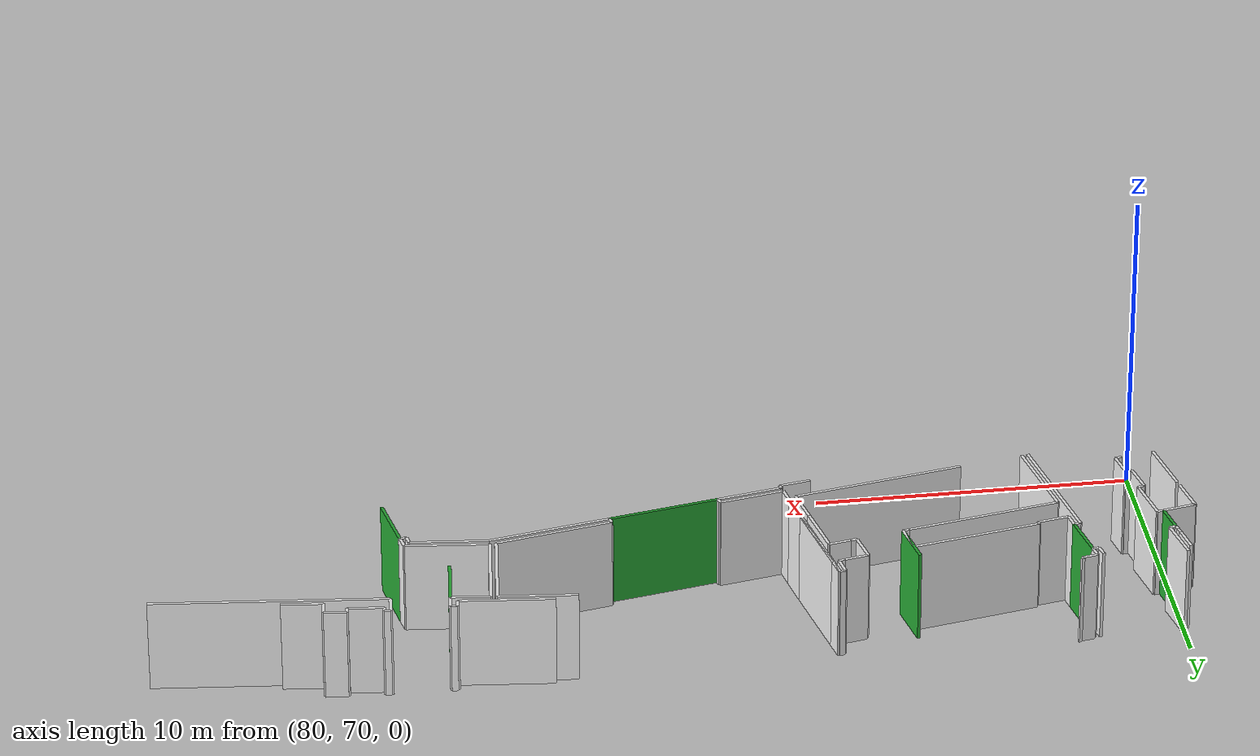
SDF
<sdf version="1.6">
 <world name="default">
  <model name="wall_80.2_77.2_1.5">
   <static>true</static>
   <pose>80.19499999997788 77.22500000009313 1.5 0 0 -1.3773690000310248</pose>
   <link name="link">
    <visual name="visual">
     <geometry><box><size>0.9884331031966657 0.1 3</size></box></geometry>
     <material>
      <script><uri>file://media/materials/scripts/gazebo.material</uri><name>Gazebo/Green</name></script>
     </material>
    </visual>
    <collision name="collision"><geometry><box><size>0.9884331031966657 0.1 3</size></box></geometry></collision>
   </link>
  </model>
  <model name="wall_102.5_77.8_1.5">
   <static>true</static>
   <pose>102.5099999998929 77.78999999980442 1.5 0 0 -1.6704649793629005</pose>
   <link name="link">
    <visual name="visual">
     <geometry><box><size>1.808977612096451 0.1 3</size></box></geometry>
     <material>
      <script><uri>file://media/materials/scripts/gazebo.material</uri><name>Gazebo/Green</name></script>
     </material>
    </visual>
    <collision name="collision"><geometry><box><size>1.808977612096451 0.1 3</size></box></geometry></collision>
   </link>
  </model>
  <model name="wall_103.9_74.2_1.5">
   <static>true</static>
   <pose>103.92999999999302 74.15500000002794 1.5 0 0 1.757092443406934</pose>
   <link name="link">
    <visual name="visual">
     <geometry><box><size>1.943630623030091 0.1 3</size></box></geometry>
     <material>
      <script><uri>file://media/materials/scripts/gazebo.material</uri><name>Gazebo/Green</name></script>
     </material>
    </visual>
    <collision name="collision"><geometry><box><size>1.943630623030091 0.1 3</size></box></geometry></collision>
   </link>
  </model>
  <model name="wall_88.3_77.5_1.5">
   <static>true</static>
   <pose>88.2949999999837 77.53999999980442 1.5 0 0 1.7642907361109128</pose>
   <link name="link">
    <visual name="visual">
     <geometry><box><size>1.508144555394632 0.1 3</size></box></geometry>
     <material>
      <script><uri>file://media/materials/scripts/gazebo.material</uri><name>Gazebo/Green</name></script>
     </material>
    </visual>
    <collision name="collision"><geometry><box><size>1.508144555394632 0.1 3</size></box></geometry></collision>
   </link>
  </model>
  <model name="wall_83.0_77.9_1.5">
   <static>true</static>
   <pose>83.01999999998952 77.89500000001863 1.5 0 0 -1.3721104451170056</pose>
   <link name="link">
    <visual name="visual">
     <geometry><box><size>1.51990131280261 0.1 3</size></box></geometry>
     <material>
      <script><uri>file://media/materials/scripts/gazebo.material</uri><name>Gazebo/Green</name></script>
     </material>
    </visual>
    <collision name="collision"><geometry><box><size>1.51990131280261 0.1 3</size></box></geometry></collision>
   </link>
  </model>
  <model name="wall_95.5_74.5_1.5">
   <static>true</static>
   <pose>95.51500000001397 74.51000000000931 1.5 0 0 0.19351316121262999</pose>
   <link name="link">
    <visual name="visual">
     <geometry><box><size>3.5360005656156344 0.1 3</size></box></geometry>
     <material>
      <script><uri>file://media/materials/scripts/gazebo.material</uri><name>Gazebo/Green</name></script>
     </material>
    </visual>
    <collision name="collision"><geometry><box><size>3.5360005656156344 0.1 3</size></box></geometry></collision>
   </link>
  </model>
  <model name="wall_79.8_76.6_1.5">
   <static>true</static>
   <pose>79.77499999999418 76.63500000000931 1.5 0 0 -2.9404657673681704</pose>
   <link name="link">
    <visual name="visual">
     <geometry><box><size>1.0511898021373587 0.1 3</size></box></geometry>
     <material>
      <script><uri>file://media/materials/scripts/gazebo.material</uri><name>Gazebo/White</name></script>
     </material>
    </visual>
    <collision name="collision"><geometry><box><size>1.0511898021373587 0.1 3</size></box></geometry></collision>
   </link>
  </model>
  <model name="wall_79.4_75.9_1.5">
   <static>true</static>
   <pose>79.38000000000466 75.92999999993481 1.5 0 0 -1.3734007669077033</pose>
   <link name="link">
    <visual name="visual">
     <geometry><box><size>1.2237646829864708 0.1 3</size></box></geometry>
     <material>
      <script><uri>file://media/materials/scripts/gazebo.material</uri><name>Gazebo/White</name></script>
     </material>
    </visual>
    <collision name="collision"><geometry><box><size>1.2237646829864708 0.1 3</size></box></geometry></collision>
   </link>
  </model>
  <model name="wall_80.0_78.5_1.5">
   <static>true</static>
   <pose>79.95000000001164 78.46499999985099 1.5 0 0 -1.3803612113601613</pose>
   <link name="link">
    <visual name="visual">
     <geometry><box><size>0.8452810184394953 0.1 3</size></box></geometry>
     <material>
      <script><uri>file://media/materials/scripts/gazebo.material</uri><name>Gazebo/White</name></script>
     </material>
    </visual>
    <collision name="collision"><geometry><box><size>0.8452810184394953 0.1 3</size></box></geometry></collision>
   </link>
  </model>
  <model name="wall_80.1_78.0_1.5">
   <static>true</static>
   <pose>80.05000000001746 77.95499999984168 1.5 0 0 -1.363300100406013</pose>
   <link name="link">
    <visual name="visual">
     <geometry><box><size>0.19416487833047835 0.1 3</size></box></geometry>
     <material>
      <script><uri>file://media/materials/scripts/gazebo.material</uri><name>Gazebo/White</name></script>
     </material>
    </visual>
    <collision name="collision"><geometry><box><size>0.19416487833047835 0.1 3</size></box></geometry></collision>
   </link>
  </model>
  <model name="wall_80.1_77.8_1.5">
   <static>true</static>
   <pose>80.08499999999185 77.78499999991618 1.5 0 0 -1.373400767019641</pose>
   <link name="link">
    <visual name="visual">
     <geometry><box><size>0.15297058531052382 0.1 3</size></box></geometry>
     <material>
      <script><uri>file://media/materials/scripts/gazebo.material</uri><name>Gazebo/White</name></script>
     </material>
    </visual>
    <collision name="collision"><geometry><box><size>0.15297058531052382 0.1 3</size></box></geometry></collision>
   </link>
  </model>
  <model name="wall_104.6_79.1_1.5">
   <static>true</static>
   <pose>104.64999999999418 79.0800000000745 1.5 0 0 -1.6814535479332997</pose>
   <link name="link">
    <visual name="visual">
     <geometry><box><size>0.1811077024621769 0.1 3</size></box></geometry>
     <material>
      <script><uri>file://media/materials/scripts/gazebo.material</uri><name>Gazebo/White</name></script>
     </material>
    </visual>
    <collision name="collision"><geometry><box><size>0.1811077024621769 0.1 3</size></box></geometry></collision>
   </link>
  </model>
  <model name="wall_105.2_78.9_1.5">
   <static>true</static>
   <pose>105.20000000001164 78.93500000005588 1.5 0 0 -0.09790030803535979</pose>
   <link name="link">
    <visual name="visual">
     <geometry><box><size>1.1253888217248873 0.1 3</size></box></geometry>
     <material>
      <script><uri>file://media/materials/scripts/gazebo.material</uri><name>Gazebo/White</name></script>
     </material>
    </visual>
    <collision name="collision"><geometry><box><size>1.1253888217248873 0.1 3</size></box></geometry></collision>
   </link>
  </model>
  <model name="wall_105.8_79.0_1.5">
   <static>true</static>
   <pose>105.77000000001863 78.97999999998137 1.5 0 0 1.4711276743037347</pose>
   <link name="link">
    <visual name="visual">
     <geometry><box><size>0.20099751260961132 0.1 3</size></box></geometry>
     <material>
      <script><uri>file://media/materials/scripts/gazebo.material</uri><name>Gazebo/White</name></script>
     </material>
    </visual>
    <collision name="collision"><geometry><box><size>0.20099751260961132 0.1 3</size></box></geometry></collision>
   </link>
  </model>
  <model name="wall_106.1_79.0_1.5">
   <static>true</static>
   <pose>106.13000000000466 79.0449999999255 1.5 0 0 -0.0996686529192806</pose>
   <link name="link">
    <visual name="visual">
     <geometry><box><size>0.7034912934617817 0.1 3</size></box></geometry>
     <material>
      <script><uri>file://media/materials/scripts/gazebo.material</uri><name>Gazebo/White</name></script>
     </material>
    </visual>
    <collision name="collision"><geometry><box><size>0.7034912934617817 0.1 3</size></box></geometry></collision>
   </link>
  </model>
  <model name="wall_106.5_78.8_1.5">
   <static>true</static>
   <pose>106.4549999999872 78.75999999977648 1.5 0 0 -1.6704649792630062</pose>
   <link name="link">
    <visual name="visual">
     <geometry><box><size>0.5024937810548861 0.1 3</size></box></geometry>
     <material>
      <script><uri>file://media/materials/scripts/gazebo.material</uri><name>Gazebo/White</name></script>
     </material>
    </visual>
    <collision name="collision"><geometry><box><size>0.5024937810548861 0.1 3</size></box></geometry></collision>
   </link>
  </model>
  <model name="wall_107.1_78.4_1.5">
   <static>true</static>
   <pose>107.07499999998254 78.44499999983236 1.5 0 0 -0.10043611196470777</pose>
   <link name="link">
    <visual name="visual">
     <geometry><box><size>1.2965338406369806 0.1 3</size></box></geometry>
     <material>
      <script><uri>file://media/materials/scripts/gazebo.material</uri><name>Gazebo/White</name></script>
     </material>
    </visual>
    <collision name="collision"><geometry><box><size>1.2965338406369806 0.1 3</size></box></geometry></collision>
   </link>
  </model>
  <model name="wall_100.9_79.1_1.5">
   <static>true</static>
   <pose>100.93499999999767 79.06000000005588 1.5 0 0 -0.10066865209668763</pose>
   <link name="link">
    <visual name="visual">
     <geometry><box><size>2.9851130631388623 0.1 3</size></box></geometry>
     <material>
      <script><uri>file://media/materials/scripts/gazebo.material</uri><name>Gazebo/White</name></script>
     </material>
    </visual>
    <collision name="collision"><geometry><box><size>2.9851130631388623 0.1 3</size></box></geometry></collision>
   </link>
  </model>
  <model name="wall_102.4_79.1_1.5">
   <static>true</static>
   <pose>102.43499999999767 79.06000000005588 1.5 0 0 1.471127674150051</pose>
   <link name="link">
    <visual name="visual">
     <geometry><box><size>0.3014962684510667 0.1 3</size></box></geometry>
     <material>
      <script><uri>file://media/materials/scripts/gazebo.material</uri><name>Gazebo/White</name></script>
     </material>
    </visual>
    <collision name="collision"><geometry><box><size>0.3014962684510667 0.1 3</size></box></geometry></collision>
   </link>
  </model>
  <model name="wall_102.6_78.9_1.5">
   <static>true</static>
   <pose>102.625 78.93999999994412 1.5 0 0 1.4711276742115245</pose>
   <link name="link">
    <visual name="visual">
     <geometry><box><size>0.502493781060678 0.1 3</size></box></geometry>
     <material>
      <script><uri>file://media/materials/scripts/gazebo.material</uri><name>Gazebo/White</name></script>
     </material>
    </visual>
    <collision name="collision"><geometry><box><size>0.502493781060678 0.1 3</size></box></geometry></collision>
   </link>
  </model>
  <model name="wall_102.6_79.2_1.5">
   <static>true</static>
   <pose>102.55000000001746 79.19999999995343 1.5 0 0 3.0419240010121844</pose>
   <link name="link">
    <visual name="visual">
     <geometry><box><size>0.20099751243585498 0.1 3</size></box></geometry>
     <material>
      <script><uri>file://media/materials/scripts/gazebo.material</uri><name>Gazebo/White</name></script>
     </material>
    </visual>
    <collision name="collision"><geometry><box><size>0.20099751243585498 0.1 3</size></box></geometry></collision>
   </link>
  </model>
  <model name="wall_104.6_79.2_1.5">
   <static>true</static>
   <pose>104.55999999999767 79.17999999993481 1.5 0 0 3.0419240009833683</pose>
   <link name="link">
    <visual name="visual">
     <geometry><box><size>0.20099751237793617 0.1 3</size></box></geometry>
     <material>
      <script><uri>file://media/materials/scripts/gazebo.material</uri><name>Gazebo/White</name></script>
     </material>
    </visual>
    <collision name="collision"><geometry><box><size>0.20099751237793617 0.1 3</size></box></geometry></collision>
   </link>
  </model>
  <model name="wall_104.4_78.8_1.5">
   <static>true</static>
   <pose>104.43000000002212 78.8499999998603 1.5 0 0 -1.6588037002976554</pose>
   <link name="link">
    <visual name="visual">
     <geometry><box><size>0.6826419268018251 0.1 3</size></box></geometry>
     <material>
      <script><uri>file://media/materials/scripts/gazebo.material</uri><name>Gazebo/White</name></script>
     </material>
    </visual>
    <collision name="collision"><geometry><box><size>0.6826419268018251 0.1 3</size></box></geometry></collision>
   </link>
  </model>
  <model name="wall_108.1_78.1_1.5">
   <static>true</static>
   <pose>108.05000000001746 78.1449999997858 1.5 0 0 3.0419240011009996</pose>
   <link name="link">
    <visual name="visual">
     <geometry><box><size>7.336409203404813 0.1 3</size></box></geometry>
     <material>
      <script><uri>file://media/materials/scripts/gazebo.material</uri><name>Gazebo/White</name></script>
     </material>
    </visual>
    <collision name="collision"><geometry><box><size>7.336409203404813 0.1 3</size></box></geometry></collision>
   </link>
  </model>
  <model name="wall_102.0_78.8_1.5">
   <static>true</static>
   <pose>101.98999999999069 78.75499999988824 1.5 0 0 3.035435852165321</pose>
   <link name="link">
    <visual name="visual">
     <geometry><box><size>1.2269066793781709 0.1 3</size></box></geometry>
     <material>
      <script><uri>file://media/materials/scripts/gazebo.material</uri><name>Gazebo/White</name></script>
     </material>
    </visual>
    <collision name="collision"><geometry><box><size>1.2269066793781709 0.1 3</size></box></geometry></collision>
   </link>
  </model>
  <model name="wall_101.2_77.3_1.5">
   <static>true</static>
   <pose>101.22500000000582 77.31499999994412 1.5 0 0 -1.6734245234307366</pose>
   <link name="link">
    <visual name="visual">
     <geometry><box><size>3.0259213470698443 0.1 3</size></box></geometry>
     <material>
      <script><uri>file://media/materials/scripts/gazebo.material</uri><name>Gazebo/White</name></script>
     </material>
    </visual>
    <collision name="collision"><geometry><box><size>3.0259213470698443 0.1 3</size></box></geometry></collision>
   </link>
  </model>
  <model name="wall_102.4_75.7_1.5">
   <static>true</static>
   <pose>102.36499999999069 75.67999999993481 1.5 0 0 -0.10005091556329442</pose>
   <link name="link">
    <visual name="visual">
     <geometry><box><size>2.6030174797640266 0.1 3</size></box></geometry>
     <material>
      <script><uri>file://media/materials/scripts/gazebo.material</uri><name>Gazebo/White</name></script>
     </material>
    </visual>
    <collision name="collision"><geometry><box><size>2.6030174797640266 0.1 3</size></box></geometry></collision>
   </link>
  </model>
  <model name="wall_103.7_75.3_1.5">
   <static>true</static>
   <pose>103.7049999999872 75.32999999984168 1.5 0 0 -1.3690339823938056</pose>
   <link name="link">
    <visual name="visual">
     <geometry><box><size>0.44911023140809897 0.1 3</size></box></geometry>
     <material>
      <script><uri>file://media/materials/scripts/gazebo.material</uri><name>Gazebo/White</name></script>
     </material>
    </visual>
    <collision name="collision"><geometry><box><size>0.44911023140809897 0.1 3</size></box></geometry></collision>
   </link>
  </model>
  <model name="wall_79.7_74.2_1.5">
   <static>true</static>
   <pose>79.72999999998137 74.17500000004657 1.5 0 0 1.76520086863083</pose>
   <link name="link">
    <visual name="visual">
     <geometry><box><size>1.967053634411279 0.1 3</size></box></geometry>
     <material>
      <script><uri>file://media/materials/scripts/gazebo.material</uri><name>Gazebo/White</name></script>
     </material>
    </visual>
    <collision name="collision"><geometry><box><size>1.967053634411279 0.1 3</size></box></geometry></collision>
   </link>
  </model>
  <model name="wall_88.3_76.8_1.5">
   <static>true</static>
   <pose>88.33999999999651 76.77999999979511 1.5 0 0 -2.9441970935720057</pose>
   <link name="link">
    <visual name="visual">
     <geometry><box><size>0.20396078056243275 0.1 3</size></box></geometry>
     <material>
      <script><uri>file://media/materials/scripts/gazebo.material</uri><name>Gazebo/White</name></script>
     </material>
    </visual>
    <collision name="collision"><geometry><box><size>0.20396078056243275 0.1 3</size></box></geometry></collision>
   </link>
  </model>
  <model name="wall_85.8_76.3_1.5">
   <static>true</static>
   <pose>85.83499999999185 76.28499999991618 1.5 0 0 -2.946597089187742</pose>
   <link name="link">
    <visual name="visual">
     <geometry><box><size>4.902917498739577 0.1 3</size></box></geometry>
     <material>
      <script><uri>file://media/materials/scripts/gazebo.material</uri><name>Gazebo/White</name></script>
     </material>
    </visual>
    <collision name="collision"><geometry><box><size>4.902917498739577 0.1 3</size></box></geometry></collision>
   </link>
  </model>
  <model name="wall_83.7_74.3_1.5">
   <static>true</static>
   <pose>83.72500000000582 74.34000000008382 1.5 0 0 -1.3727467447894708</pose>
   <link name="link">
    <visual name="visual">
     <geometry><box><size>2.9986163475345844 0.1 3</size></box></geometry>
     <material>
      <script><uri>file://media/materials/scripts/gazebo.material</uri><name>Gazebo/White</name></script>
     </material>
    </visual>
    <collision name="collision"><geometry><box><size>2.9986163475345844 0.1 3</size></box></geometry></collision>
   </link>
  </model>
  <model name="wall_88.7_73.8_1.5">
   <static>true</static>
   <pose>88.7050000000163 73.80000000004657 1.5 0 0 0.1955976473787338</pose>
   <link name="link">
    <visual name="visual">
     <geometry><box><size>5.4539985331744765 0.1 3</size></box></geometry>
     <material>
      <script><uri>file://media/materials/scripts/gazebo.material</uri><name>Gazebo/White</name></script>
     </material>
    </visual>
    <collision name="collision"><geometry><box><size>5.4539985331744765 0.1 3</size></box></geometry></collision>
   </link>
  </model>
  <model name="wall_91.4_74.4_1.5">
   <static>true</static>
   <pose>91.36499999999069 74.42999999993481 1.5 0 0 1.7196862747459547</pose>
   <link name="link">
    <visual name="visual">
     <geometry><box><size>0.2022374838894058 0.1 3</size></box></geometry>
     <material>
      <script><uri>file://media/materials/scripts/gazebo.material</uri><name>Gazebo/White</name></script>
     </material>
    </visual>
    <collision name="collision"><geometry><box><size>0.2022374838894058 0.1 3</size></box></geometry></collision>
   </link>
  </model>
  <model name="wall_91.2_75.0_1.5">
   <static>true</static>
   <pose>91.25 75.0199999997858 1.5 0 0 1.7721134351276446</pose>
   <link name="link">
    <visual name="visual">
     <geometry><box><size>1.0001999799764374 0.1 3</size></box></geometry>
     <material>
      <script><uri>file://media/materials/scripts/gazebo.material</uri><name>Gazebo/White</name></script>
     </material>
    </visual>
    <collision name="collision"><geometry><box><size>1.0001999799764374 0.1 3</size></box></geometry></collision>
   </link>
  </model>
  <model name="wall_91.0_76.4_1.5">
   <static>true</static>
   <pose>90.97500000000582 76.38499999977648 1.5 0 0 1.7681918866639668</pose>
   <link name="link">
    <visual name="visual">
     <geometry><box><size>1.784656829764324 0.1 3</size></box></geometry>
     <material>
      <script><uri>file://media/materials/scripts/gazebo.material</uri><name>Gazebo/White</name></script>
     </material>
    </visual>
    <collision name="collision"><geometry><box><size>1.784656829764324 0.1 3</size></box></geometry></collision>
   </link>
  </model>
  <model name="wall_90.5_77.2_1.5">
   <static>true</static>
   <pose>90.4549999999872 77.19499999983236 1.5 0 0 -2.9553698133356825</pose>
   <link name="link">
    <visual name="visual">
     <geometry><box><size>0.7021395872432744 0.1 3</size></box></geometry>
     <material>
      <script><uri>file://media/materials/scripts/gazebo.material</uri><name>Gazebo/White</name></script>
     </material>
    </visual>
    <collision name="collision"><geometry><box><size>0.7021395872432744 0.1 3</size></box></geometry></collision>
   </link>
  </model>
  <model name="wall_90.0_77.1_1.5">
   <static>true</static>
   <pose>90.01499999998487 77.10999999986961 1.5 0 0 -2.9340964269693144</pose>
   <link name="link">
    <visual name="visual">
     <geometry><box><size>0.19416487839942884 0.1 3</size></box></geometry>
     <material>
      <script><uri>file://media/materials/scripts/gazebo.material</uri><name>Gazebo/White</name></script>
     </material>
    </visual>
    <collision name="collision"><geometry><box><size>0.19416487839942884 0.1 3</size></box></geometry></collision>
   </link>
  </model>
  <model name="wall_80.4_76.8_1.5">
   <static>true</static>
   <pose>80.38999999998487 76.76000000000931 1.5 0 0 -2.944197095810762</pose>
   <link name="link">
    <visual name="visual">
     <geometry><box><size>0.20396078047110908 0.1 3</size></box></geometry>
     <material>
      <script><uri>file://media/materials/scripts/gazebo.material</uri><name>Gazebo/White</name></script>
     </material>
    </visual>
    <collision name="collision"><geometry><box><size>0.20396078047110908 0.1 3</size></box></geometry></collision>
   </link>
  </model>
  <model name="wall_80.2_77.7_1.5">
   <static>true</static>
   <pose>80.19999999998254 77.72999999998137 1.5 0 0 0.19739556001778746</pose>
   <link name="link">
    <visual name="visual">
     <geometry><box><size>0.20396078056243275 0.1 3</size></box></geometry>
     <material>
      <script><uri>file://media/materials/scripts/gazebo.material</uri><name>Gazebo/White</name></script>
     </material>
    </visual>
    <collision name="collision"><geometry><box><size>0.20396078056243275 0.1 3</size></box></geometry></collision>
   </link>
  </model>
  <model name="wall_80.2_78.5_1.5">
   <static>true</static>
   <pose>80.15499999999884 78.45999999996275 1.5 0 0 1.772251404259705</pose>
   <link name="link">
    <visual name="visual">
     <geometry><box><size>1.449310180663977 0.1 3</size></box></geometry>
     <material>
      <script><uri>file://media/materials/scripts/gazebo.material</uri><name>Gazebo/White</name></script>
     </material>
    </visual>
    <collision name="collision"><geometry><box><size>1.449310180663977 0.1 3</size></box></geometry></collision>
   </link>
  </model>
  <model name="wall_82.6_78.8_1.5">
   <static>true</static>
   <pose>82.63999999998487 78.79000000003725 1.5 0 0 -1.3521273810750338</pose>
   <link name="link">
    <visual name="visual">
     <geometry><box><size>0.3687817786225433 0.1 3</size></box></geometry>
     <material>
      <script><uri>file://media/materials/scripts/gazebo.material</uri><name>Gazebo/White</name></script>
     </material>
    </visual>
    <collision name="collision"><geometry><box><size>0.3687817786225433 0.1 3</size></box></geometry></collision>
   </link>
  </model>
  <model name="wall_82.8_78.6_1.5">
   <static>true</static>
   <pose>82.77499999999418 78.625 1.5 0 0 0.15660187831921837</pose>
   <link name="link">
    <visual name="visual">
     <geometry><box><size>0.19235384065968367 0.1 3</size></box></geometry>
     <material>
      <script><uri>file://media/materials/scripts/gazebo.material</uri><name>Gazebo/White</name></script>
     </material>
    </visual>
    <collision name="collision"><geometry><box><size>0.19235384065968367 0.1 3</size></box></geometry></collision>
   </link>
  </model>
  <model name="wall_83.1_77.1_1.5">
   <static>true</static>
   <pose>83.06999999997788 77.12999999988824 1.5 0 0 -2.9441970935720057</pose>
   <link name="link">
    <visual name="visual">
     <geometry><box><size>0.20396078056243275 0.1 3</size></box></geometry>
     <material>
      <script><uri>file://media/materials/scripts/gazebo.material</uri><name>Gazebo/White</name></script>
     </material>
    </visual>
    <collision name="collision"><geometry><box><size>0.20396078056243275 0.1 3</size></box></geometry></collision>
   </link>
  </model>
  <model name="wall_83.4_75.0_1.5">
   <static>true</static>
   <pose>83.39499999998952 74.9749999998603 1.5 0 0 -1.3743016675951543</pose>
   <link name="link">
    <visual name="visual">
     <geometry><box><size>4.353779966904442 0.1 3</size></box></geometry>
     <material>
      <script><uri>file://media/materials/scripts/gazebo.material</uri><name>Gazebo/White</name></script>
     </material>
    </visual>
    <collision name="collision"><geometry><box><size>4.353779966904442 0.1 3</size></box></geometry></collision>
   </link>
  </model>
  <model name="wall_81.1_73.4_1.5">
   <static>true</static>
   <pose>81.05000000001746 73.43000000016764 1.5 0 0 0.19739556001778746</pose>
   <link name="link">
    <visual name="visual">
     <geometry><box><size>0.20396078056243275 0.1 3</size></box></geometry>
     <material>
      <script><uri>file://media/materials/scripts/gazebo.material</uri><name>Gazebo/White</name></script>
     </material>
    </visual>
    <collision name="collision"><geometry><box><size>0.20396078056243275 0.1 3</size></box></geometry></collision>
   </link>
  </model>
  <model name="wall_81.1_73.9_1.5">
   <static>true</static>
   <pose>81.07000000000698 73.86499999999069 1.5 0 0 1.7612314423339088</pose>
   <link name="link">
    <visual name="visual">
     <geometry><box><size>0.8452810179822523 0.1 3</size></box></geometry>
     <material>
      <script><uri>file://media/materials/scripts/gazebo.material</uri><name>Gazebo/White</name></script>
     </material>
    </visual>
    <collision name="collision"><geometry><box><size>0.8452810179822523 0.1 3</size></box></geometry></collision>
   </link>
  </model>
  <model name="wall_80.9_74.3_1.5">
   <static>true</static>
   <pose>80.88999999998487 74.26000000000931 1.5 0 0 -2.944197095810762</pose>
   <link name="link">
    <visual name="visual">
     <geometry><box><size>0.20396078047110908 0.1 3</size></box></geometry>
     <material>
      <script><uri>file://media/materials/scripts/gazebo.material</uri><name>Gazebo/White</name></script>
     </material>
    </visual>
    <collision name="collision"><geometry><box><size>0.20396078047110908 0.1 3</size></box></geometry></collision>
   </link>
  </model>
  <model name="wall_80.7_74.7_1.5">
   <static>true</static>
   <pose>80.69000000000233 74.7300000002142 1.5 0 0 1.7721134351276446</pose>
   <link name="link">
    <visual name="visual">
     <geometry><box><size>1.0001999799764374 0.1 3</size></box></geometry>
     <material>
      <script><uri>file://media/materials/scripts/gazebo.material</uri><name>Gazebo/White</name></script>
     </material>
    </visual>
    <collision name="collision"><geometry><box><size>1.0001999799764374 0.1 3</size></box></geometry></collision>
   </link>
  </model>
  <model name="wall_80.7_75.2_1.5">
   <static>true</static>
   <pose>80.69000000000233 75.23999999999069 1.5 0 0 0.19739555783500018</pose>
   <link name="link">
    <visual name="visual">
     <geometry><box><size>0.20396078041403173 0.1 3</size></box></geometry>
     <material>
      <script><uri>file://media/materials/scripts/gazebo.material</uri><name>Gazebo/White</name></script>
     </material>
    </visual>
    <collision name="collision"><geometry><box><size>0.20396078041403173 0.1 3</size></box></geometry></collision>
   </link>
  </model>
  <model name="wall_80.6_76.0_1.5">
   <static>true</static>
   <pose>80.63999999998487 76.0199999997858 1.5 0 0 1.765660246474069</pose>
   <link name="link">
    <visual name="visual">
     <geometry><box><size>1.5493224325651649 0.1 3</size></box></geometry>
     <material>
      <script><uri>file://media/materials/scripts/gazebo.material</uri><name>Gazebo/White</name></script>
     </material>
    </visual>
    <collision name="collision"><geometry><box><size>1.5493224325651649 0.1 3</size></box></geometry></collision>
   </link>
  </model>
  <model name="wall_91.3_73.5_1.5">
   <static>true</static>
   <pose>91.26499999998487 73.54000000003725 1.5 0 0 0.19118445928953165</pose>
   <link name="link">
    <visual name="visual">
     <geometry><box><size>0.9472592041673281 0.1 3</size></box></geometry>
     <material>
      <script><uri>file://media/materials/scripts/gazebo.material</uri><name>Gazebo/White</name></script>
     </material>
    </visual>
    <collision name="collision"><geometry><box><size>0.9472592041673281 0.1 3</size></box></geometry></collision>
   </link>
  </model>
  <model name="wall_91.8_73.6_1.5">
   <static>true</static>
   <pose>91.75500000000466 73.63999999989755 1.5 0 0 0.3805063771123649</pose>
   <link name="link">
    <visual name="visual">
     <geometry><box><size>0.0538516481214983 0.1 3</size></box></geometry>
     <material>
      <script><uri>file://media/materials/scripts/gazebo.material</uri><name>Gazebo/White</name></script>
     </material>
    </visual>
    <collision name="collision"><geometry><box><size>0.0538516481214983 0.1 3</size></box></geometry></collision>
   </link>
  </model>
  <model name="wall_91.8_73.7_1.5">
   <static>true</static>
   <pose>91.76500000001397 73.70999999996275 1.5 0 0 1.8157749899217608</pose>
   <link name="link">
    <visual name="visual">
     <geometry><box><size>0.12369316888372806 0.1 3</size></box></geometry>
     <material>
      <script><uri>file://media/materials/scripts/gazebo.material</uri><name>Gazebo/White</name></script>
     </material>
    </visual>
    <collision name="collision"><geometry><box><size>0.12369316888372806 0.1 3</size></box></geometry></collision>
   </link>
  </model>
  <model name="wall_91.8_73.8_1.5">
   <static>true</static>
   <pose>91.77499999999418 73.77499999990687 1.5 0 0 0.197395555596244</pose>
   <link name="link">
    <visual name="visual">
     <geometry><box><size>0.050990195080677016 0.1 3</size></box></geometry>
     <material>
      <script><uri>file://media/materials/scripts/gazebo.material</uri><name>Gazebo/White</name></script>
     </material>
    </visual>
    <collision name="collision">
     <geometry><box><size>0.050990195080677016 0.1 3</size></box></geometry>
    </collision>
   </link>
  </model>
  <model name="wall_92.8_74.0_1.5">
   <static>true</static>
   <pose>92.79000000000815 73.9749999998603 1.5 0 0 0.19448011627470685</pose>
   <link name="link">
    <visual name="visual">
     <geometry><box><size>2.0180436071250893 0.1 3</size></box></geometry>
     <material>
      <script><uri>file://media/materials/scripts/gazebo.material</uri><name>Gazebo/White</name></script>
     </material>
    </visual>
    <collision name="collision"><geometry><box><size>2.0180436071250893 0.1 3</size></box></geometry></collision>
   </link>
  </model>
  <model name="wall_99.2_75.2_1.5">
   <static>true</static>
   <pose>99.16000000000349 75.22999999998137 1.5 0 0 0.19638851078826064</pose>
   <link name="link">
    <visual name="visual">
     <geometry><box><size>3.8948684187933256 0.1 3</size></box></geometry>
     <material>
      <script><uri>file://media/materials/scripts/gazebo.material</uri><name>Gazebo/White</name></script>
     </material>
    </visual>
    <collision name="collision"><geometry><box><size>3.8948684187933256 0.1 3</size></box></geometry></collision>
   </link>
  </model>
  <model name="wall_102.3_75.5_1.5">
   <static>true</static>
   <pose>102.27999999999884 75.48999999999069 1.5 0 0 -0.09885032196984292</pose>
   <link name="link">
    <visual name="visual">
     <geometry><box><size>2.431871707102348 0.1 3</size></box></geometry>
     <material>
      <script><uri>file://media/materials/scripts/gazebo.material</uri><name>Gazebo/White</name></script>
     </material>
    </visual>
    <collision name="collision"><geometry><box><size>2.431871707102348 0.1 3</size></box></geometry></collision>
   </link>
  </model>
  <model name="wall_103.5_75.2_1.5">
   <static>true</static>
   <pose>103.51999999998952 75.21999999997206 1.5 0 0 -1.3734007671315789</pose>
   <link name="link">
    <visual name="visual">
     <geometry><box><size>0.30594117108908153 0.1 3</size></box></geometry>
     <material>
      <script><uri>file://media/materials/scripts/gazebo.material</uri><name>Gazebo/White</name></script>
     </material>
    </visual>
    <collision name="collision"><geometry><box><size>0.30594117108908153 0.1 3</size></box></geometry></collision>
   </link>
  </model>
  <model name="wall_103.6_75.1_1.5">
   <static>true</static>
   <pose>103.64999999999418 75.08999999985099 1.5 0 0 0.19739556001778746</pose>
   <link name="link">
    <visual name="visual">
     <geometry><box><size>0.20396078056243275 0.1 3</size></box></geometry>
     <material>
      <script><uri>file://media/materials/scripts/gazebo.material</uri><name>Gazebo/White</name></script>
     </material>
    </visual>
    <collision name="collision"><geometry><box><size>0.20396078056243275 0.1 3</size></box></geometry></collision>
   </link>
  </model>
  <model name="wall_100.0_79.0_1.5">
   <static>true</static>
   <pose>99.96499999999651 78.95999999996275 1.5 0 0 -0.09764763673931534</pose>
   <link name="link">
    <visual name="visual">
     <geometry><box><size>2.461727036079413 0.1 3</size></box></geometry>
     <material>
      <script><uri>file://media/materials/scripts/gazebo.material</uri><name>Gazebo/White</name></script>
     </material>
    </visual>
    <collision name="collision"><geometry><box><size>2.461727036079413 0.1 3</size></box></geometry></collision>
   </link>
  </model>
  <model name="wall_101.0_77.3_1.5">
   <static>true</static>
   <pose>101.02999999999884 77.30999999982305 1.5 0 0 -1.6749927620578993</pose>
   <link name="link">
    <visual name="visual">
     <geometry><box><size>3.0766865294251953 0.1 3</size></box></geometry>
     <material>
      <script><uri>file://media/materials/scripts/gazebo.material</uri><name>Gazebo/White</name></script>
     </material>
    </visual>
    <collision name="collision"><geometry><box><size>3.0766865294251953 0.1 3</size></box></geometry></collision>
   </link>
  </model>
  <model name="wall_99.0_75.4_1.5">
   <static>true</static>
   <pose>99.04000000000815 75.41499999980442 1.5 0 0 -2.9447225797697154</pose>
   <link name="link">
    <visual name="visual">
     <geometry><box><size>3.7320905669323365 0.1 3</size></box></geometry>
     <material>
      <script><uri>file://media/materials/scripts/gazebo.material</uri><name>Gazebo/White</name></script>
     </material>
    </visual>
    <collision name="collision"><geometry><box><size>3.7320905669323365 0.1 3</size></box></geometry></collision>
   </link>
  </model>
  <model name="wall_97.2_74.9_1.5">
   <static>true</static>
   <pose>97.23000000001048 74.94999999995343 1.5 0 0 -1.373400766777109</pose>
   <link name="link">
    <visual name="visual">
     <geometry><box><size>0.20396078026563078 0.1 3</size></box></geometry>
     <material>
      <script><uri>file://media/materials/scripts/gazebo.material</uri><name>Gazebo/White</name></script>
     </material>
    </visual>
    <collision name="collision"><geometry><box><size>0.20396078026563078 0.1 3</size></box></geometry></collision>
   </link>
  </model>
  <model name="wall_93.8_74.3_1.5">
   <static>true</static>
   <pose>93.76000000000931 74.26499999989755 1.5 0 0 1.7782925534771346</pose>
   <link name="link">
    <visual name="visual">
     <geometry><box><size>0.19416487834246976 0.1 3</size></box></geometry>
     <material>
      <script><uri>file://media/materials/scripts/gazebo.material</uri><name>Gazebo/White</name></script>
     </material>
    </visual>
    <collision name="collision"><geometry><box><size>0.19416487834246976 0.1 3</size></box></geometry></collision>
   </link>
  </model>
  <model name="wall_92.7_74.2_1.5">
   <static>true</static>
   <pose>92.72500000000582 74.15999999991618 1.5 0 0 -2.947040688012496</pose>
   <link name="link">
    <visual name="visual">
     <geometry><box><size>2.0690335907864346 0.1 3</size></box></geometry>
     <material>
      <script><uri>file://media/materials/scripts/gazebo.material</uri><name>Gazebo/White</name></script>
     </material>
    </visual>
    <collision name="collision"><geometry><box><size>2.0690335907864346 0.1 3</size></box></geometry></collision>
   </link>
  </model>
  <model name="wall_91.7_74.3_1.5">
   <static>true</static>
   <pose>91.65000000002328 74.27000000001863 1.5 0 0 1.761980786351043</pose>
   <link name="link">
    <visual name="visual">
     <geometry><box><size>0.6315061362627153 0.1 3</size></box></geometry>
     <material>
      <script><uri>file://media/materials/scripts/gazebo.material</uri><name>Gazebo/White</name></script>
     </material>
    </visual>
    <collision name="collision"><geometry><box><size>0.6315061362627153 0.1 3</size></box></geometry></collision>
   </link>
  </model>
  <model name="wall_91.5_75.1_1.5">
   <static>true</static>
   <pose>91.49500000002445 75.07000000006519 1.5 0 0 1.7622980452703567</pose>
   <link name="link">
    <visual name="visual">
     <geometry><box><size>0.9982484660465935 0.1 3</size></box></geometry>
     <material>
      <script><uri>file://media/materials/scripts/gazebo.material</uri><name>Gazebo/White</name></script>
     </material>
    </visual>
    <collision name="collision"><geometry><box><size>0.9982484660465935 0.1 3</size></box></geometry></collision>
   </link>
  </model>
  <model name="wall_91.1_76.9_1.5">
   <static>true</static>
   <pose>91.125 76.92500000004657 1.5 0 0 1.7696003364353865</pose>
   <link name="link">
    <visual name="visual">
     <geometry><box><size>2.7848518811508667 0.1 3</size></box></geometry>
     <material>
      <script><uri>file://media/materials/scripts/gazebo.material</uri><name>Gazebo/White</name></script>
     </material>
    </visual>
    <collision name="collision"><geometry><box><size>2.7848518811508667 0.1 3</size></box></geometry></collision>
   </link>
  </model>
  <model name="wall_90.8_78.6_1.5">
   <static>true</static>
   <pose>90.78999999997905 78.58499999996275 1.5 0 0 1.7714492041565322</pose>
   <link name="link">
    <visual name="visual">
     <geometry><box><size>0.6020797287926647 0.1 3</size></box></geometry>
     <material>
      <script><uri>file://media/materials/scripts/gazebo.material</uri><name>Gazebo/White</name></script>
     </material>
    </visual>
    <collision name="collision"><geometry><box><size>0.6020797287926647 0.1 3</size></box></geometry></collision>
   </link>
  </model>
  <model name="wall_90.6_78.9_1.5">
   <static>true</static>
   <pose>90.63999999998487 78.85999999986961 1.5 0 0 -2.9229237075104124</pose>
   <link name="link">
    <visual name="visual">
     <geometry><box><size>0.18439088914712043 0.1 3</size></box></geometry>
     <material>
      <script><uri>file://media/materials/scripts/gazebo.material</uri><name>Gazebo/White</name></script>
     </material>
    </visual>
    <collision name="collision"><geometry><box><size>0.18439088914712043 0.1 3</size></box></geometry></collision>
   </link>
  </model>
  <model name="wall_90.6_78.5_1.5">
   <static>true</static>
   <pose>90.60499999998137 78.5449999999255 1.5 0 0 -1.386471917872574</pose>
   <link name="link">
    <visual name="visual">
     <geometry><box><size>0.6001666433758985 0.1 3</size></box></geometry>
     <material>
      <script><uri>file://media/materials/scripts/gazebo.material</uri><name>Gazebo/White</name></script>
     </material>
    </visual>
    <collision name="collision"><geometry><box><size>0.6001666433758985 0.1 3</size></box></geometry></collision>
   </link>
  </model>
  <model name="wall_90.6_78.2_1.5">
   <static>true</static>
   <pose>90.56499999997322 78.22999999998137 1.5 0 0 -2.9340964269693144</pose>
   <link name="link">
    <visual name="visual">
     <geometry><box><size>0.19416487839942884 0.1 3</size></box></geometry>
     <material>
      <script><uri>file://media/materials/scripts/gazebo.material</uri><name>Gazebo/White</name></script>
     </material>
    </visual>
    <collision name="collision"><geometry><box><size>0.19416487839942884 0.1 3</size></box></geometry></collision>
   </link>
  </model>
  <model name="wall_90.1_78.1_1.5">
   <static>true</static>
   <pose>90.09499999997206 78.13500000000931 1.5 0 0 -2.9441970938593127</pose>
   <link name="link">
    <visual name="visual">
     <geometry><box><size>0.764852927020653 0.1 3</size></box></geometry>
     <material>
      <script><uri>file://media/materials/scripts/gazebo.material</uri><name>Gazebo/White</name></script>
     </material>
    </visual>
    <collision name="collision"><geometry><box><size>0.764852927020653 0.1 3</size></box></geometry></collision>
   </link>
  </model>
  <model name="wall_89.8_77.6_1.5">
   <static>true</static>
   <pose>89.81999999997788 77.57499999995343 1.5 0 0 -1.367460242796885</pose>
   <link name="link">
    <visual name="visual">
     <geometry><box><size>0.990403958191881 0.1 3</size></box></geometry>
     <material>
      <script><uri>file://media/materials/scripts/gazebo.material</uri><name>Gazebo/White</name></script>
     </material>
    </visual>
    <collision name="collision"><geometry><box><size>0.990403958191881 0.1 3</size></box></geometry></collision>
   </link>
  </model>
  <model name="wall_88.3_77.3_1.5">
   <static>true</static>
   <pose>88.33999999999651 77.28499999991618 1.5 0 0 1.7741324107929084</pose>
   <link name="link">
    <visual name="visual">
     <geometry><box><size>0.990403958191881 0.1 3</size></box></geometry>
     <material>
      <script><uri>file://media/materials/scripts/gazebo.material</uri><name>Gazebo/White</name></script>
     </material>
    </visual>
    <collision name="collision"><geometry><box><size>0.990403958191881 0.1 3</size></box></geometry></collision>
   </link>
  </model>
  <model name="wall_86.2_77.4_1.5">
   <static>true</static>
   <pose>86.22999999998137 77.37000000011176 1.5 0 0 -2.9451540312923132</pose>
   <link name="link">
    <visual name="visual">
     <geometry><box><size>4.098829101078957 0.1 3</size></box></geometry>
     <material>
      <script><uri>file://media/materials/scripts/gazebo.material</uri><name>Gazebo/White</name></script>
     </material>
    </visual>
    <collision name="collision"><geometry><box><size>4.098829101078957 0.1 3</size></box></geometry></collision>
   </link>
  </model>
  <model name="wall_84.2_76.9_1.5">
   <static>true</static>
   <pose>84.22999999998137 76.92500000004657 1.5 0 0 -1.3521273814687915</pose>
   <link name="link">
    <visual name="visual">
     <geometry><box><size>0.09219544488607884 0.1 3</size></box></geometry>
     <material>
      <script><uri>file://media/materials/scripts/gazebo.material</uri><name>Gazebo/White</name></script>
     </material>
    </visual>
    <collision name="collision"><geometry><box><size>0.09219544488607884 0.1 3</size></box></geometry></collision>
   </link>
  </model>
  <model name="wall_83.8_76.8_1.5">
   <static>true</static>
   <pose>83.75 76.78499999991618 1.5 0 0 -2.950090935171577</pose>
   <link name="link">
    <visual name="visual">
     <geometry><box><size>0.9982484660355146 0.1 3</size></box></geometry>
     <material>
      <script><uri>file://media/materials/scripts/gazebo.material</uri><name>Gazebo/White</name></script>
     </material>
    </visual>
    <collision name="collision"><geometry><box><size>0.9982484660355146 0.1 3</size></box></geometry></collision>
   </link>
  </model>
  <model name="wall_83.2_76.9_1.5">
   <static>true</static>
   <pose>83.21499999999651 76.9199999999255 1.5 0 0 1.7640078107115875</pose>
   <link name="link">
    <visual name="visual">
     <geometry><box><size>0.4687216657786766 0.1 3</size></box></geometry>
     <material>
      <script><uri>file://media/materials/scripts/gazebo.material</uri><name>Gazebo/White</name></script>
     </material>
    </visual>
    <collision name="collision"><geometry><box><size>0.4687216657786766 0.1 3</size></box></geometry></collision>
   </link>
  </model>
  <model name="wall_82.8_78.8_1.5">
   <static>true</static>
   <pose>82.83499999999185 78.82499999995343 1.5 0 0 1.7577755969067386</pose>
   <link name="link">
    <visual name="visual">
     <geometry><box><size>0.37656340732881893 0.1 3</size></box></geometry>
     <material>
      <script><uri>file://media/materials/scripts/gazebo.material</uri><name>Gazebo/White</name></script>
     </material>
    </visual>
    <collision name="collision"><geometry><box><size>0.37656340732881893 0.1 3</size></box></geometry></collision>
   </link>
  </model>
  <model name="wall_83.0_79.1_1.5">
   <static>true</static>
   <pose>83.0449999999837 79.05499999993481 1.5 0 0 0.18164883062852336</pose>
   <link name="link">
    <visual name="visual">
     <geometry><box><size>0.49819674833128924 0.1 3</size></box></geometry>
     <material>
      <script><uri>file://media/materials/scripts/gazebo.material</uri><name>Gazebo/White</name></script>
     </material>
    </visual>
    <collision name="collision"><geometry><box><size>0.49819674833128924 0.1 3</size></box></geometry></collision>
   </link>
  </model>
  <model name="wall_83.3_79.1_1.5">
   <static>true</static>
   <pose>83.27999999999884 79.14000000013039 1.5 0 0 1.8157749892369648</pose>
   <link name="link">
    <visual name="visual">
     <geometry><box><size>0.08246211257503461 0.1 3</size></box></geometry>
     <material>
      <script><uri>file://media/materials/scripts/gazebo.material</uri><name>Gazebo/White</name></script>
     </material>
    </visual>
    <collision name="collision"><geometry><box><size>0.08246211257503461 0.1 3</size></box></geometry></collision>
   </link>
  </model>
  <model name="wall_91.2_76.4_1.5">
   <static>true</static>
   <pose>91.22000000000116 76.4199999999255 1.5 0 0 -1.3741826276038303</pose>
   <link name="link">
    <visual name="visual">
     <geometry><box><size>5.016652270124415 0.1 3</size></box></geometry>
     <material>
      <script><uri>file://media/materials/scripts/gazebo.material</uri><name>Gazebo/White</name></script>
     </material>
    </visual>
    <collision name="collision"><geometry><box><size>5.016652270124415 0.1 3</size></box></geometry></collision>
   </link>
  </model>
 </world>
</sdf>
